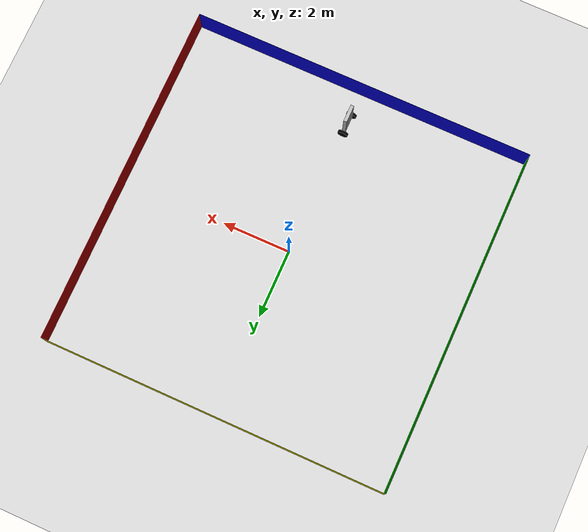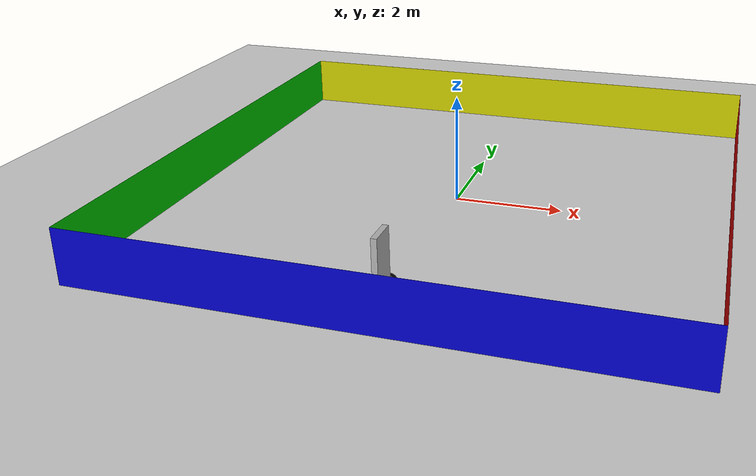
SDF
<sdf version='1.10'>
  <world name='empty'>
    <physics name='1ms' type='ignored'>
      <max_step_size>0.001</max_step_size>
      <real_time_factor>1</real_time_factor>
      <real_time_update_rate>1000</real_time_update_rate>
    </physics>
    <plugin name='gz::sim::systems::Physics' filename='gz-sim-physics-system' />
    <plugin name='gz::sim::systems::UserCommands' filename='gz-sim-user-commands-system' />
    <plugin name='gz::sim::systems::SceneBroadcaster' filename='gz-sim-scene-broadcaster-system' />
    <plugin name='gz::sim::systems::Contact' filename='gz-sim-contact-system' />
    <gravity>0 0 -9.8000000000000007</gravity>
    <magnetic_field>5.5644999999999998e-06 2.2875799999999999e-05 -4.2388400000000002e-05</magnetic_field>
    <atmosphere type='adiabatic' />
    <scene>
      <ambient>0.400000006 0.400000006 0.400000006 1</ambient>
      <background>0.699999988 0.699999988 0.699999988 1</background>
      <shadows>true</shadows>
    </scene>
    <model name='ground_plane'>
      <static>true</static>
      <link name='link'>
        <collision name='collision'>
          <geometry>
            <plane>
              <normal>0 0 1</normal>
              <size>10 10</size>
            </plane>
          </geometry>
          <surface>
            <friction>
              <ode />
            </friction>
            <bounce />
            <contact />
          </surface>
        </collision>
        <visual name='visual'>
          <geometry>
            <plane>
              <normal>0 0 1</normal>
              <size>10 10</size>
            </plane>
          </geometry>
          <material>
            <ambient>0.800000012 0.800000012 0.800000012 1</ambient>
            <diffuse>0.800000012 0.800000012 0.800000012 1</diffuse>
            <specular>0.800000012 0.800000012 0.800000012 1</specular>
          </material>
        </visual>
        <pose>0 0 0 0 0 0</pose>
        <inertial>
          <pose>0 0 0 0 0 0</pose>
          <mass>1</mass>
          <inertia>
            <ixx>1</ixx>
            <ixy>0</ixy>
            <ixz>0</ixz>
            <iyy>1</iyy>
            <iyz>0</iyz>
            <izz>1</izz>
          </inertia>
        </inertial>
        <enable_wind>false</enable_wind>
      </link>
      <pose>0 0 0 0 0 0</pose>
      <self_collide>false</self_collide>
    </model>
    <model name='wall_y1_red'>
      <static>true</static>
      <link name='link'>
        <collision name='collision'>
          <geometry>
            <plane>
              <normal>1 0 0</normal>
              <size>1 10</size>
            </plane>
          </geometry>
          <surface>
            <friction>
              <ode />
            </friction>
            <bounce />
            <contact />
          </surface>
        </collision>
        <visual name='visual'>
          <geometry>
            <plane>
              <normal>1 0 0</normal>
              <size>1 10</size>
            </plane>
          </geometry>
          <material>
            <ambient>0.800000012 0.000000012 0.000000012 1</ambient>
            <diffuse>0.800000012 0.000000012 0.00000012 1</diffuse>
            <specular>0.800000012 0.000000012 0.000000012 1</specular>
          </material>
        </visual>
        <pose>5 0 0.5 0 0 3.141592654</pose>
        <inertial>
          <pose>0 0 0 0 0 0</pose>
          <mass>1</mass>
          <inertia>
            <ixx>1</ixx>
            <ixy>0</ixy>
            <ixz>0</ixz>
            <iyy>1</iyy>
            <iyz>0</iyz>
            <izz>1</izz>
          </inertia>
        </inertial>
        <enable_wind>false</enable_wind>
      </link>
      <pose>0 0 0 0 0 0</pose>
      <self_collide>false</self_collide>
    </model>
    <model name='wall_y2_green'>
      <static>true</static>
      <link name='link'>
        <collision name='collision'>
          <geometry>
            <plane>
              <normal>1 0 0</normal>
              <size>1 10</size>
            </plane>
          </geometry>
          <surface>
            <friction>
              <ode />
            </friction>
            <bounce />
            <contact />
          </surface>
        </collision>
        <visual name='visual'>
          <geometry>
            <plane>
              <normal>1 0 0</normal>
              <size>1 10</size>
            </plane>
          </geometry>
          <material>
            <ambient>0.000000012 0.800000012 0.000000012 1</ambient>
            <diffuse>0.000000012 0.800000012 0.000000012 1</diffuse>
            <specular>0.000000012 0.800000012 0.000000012 1</specular>
          </material>
        </visual>
        <pose>-5 0 0.5 0 0 0</pose>
        <inertial>
          <pose>0 0 0 0 0 0</pose>
          <mass>1</mass>
          <inertia>
            <ixx>1</ixx>
            <ixy>0</ixy>
            <ixz>0</ixz>
            <iyy>1</iyy>
            <iyz>0</iyz>
            <izz>1</izz>
          </inertia>
        </inertial>
        <enable_wind>false</enable_wind>
      </link>
      <pose>0 0 0 0 0 0</pose>
      <self_collide>false</self_collide>
    </model>
    <model name='wall_x1_blue'>
      <static>true</static>
      <link name='link'>
        <collision name='collision'>
          <geometry>
            <plane>
              <normal>0 1 0</normal>
              <size>1 10</size>
            </plane>
          </geometry>
          <surface>
            <friction>
              <ode />
            </friction>
            <bounce />
            <contact />
          </surface>
        </collision>
        <visual name='visual'>
          <geometry>
            <plane>
              <normal>0 1 0</normal>
              <size>1 10</size>
            </plane>
          </geometry>
          <material>
            <ambient>0.000000012 0.000000012 0.800000012 1</ambient>
            <diffuse>0.000000012 0.000000012 0.800000012 1</diffuse>
            <specular>0.000000012 0.000000012 0.800000012 1</specular>
          </material>
        </visual>
        <pose>0 -5 0.5 0 1.570796 0</pose>
        <inertial>
          <pose>0 0 0 0 0 0</pose>
          <mass>1</mass>
          <inertia>
            <ixx>1</ixx>
            <ixy>0</ixy>
            <ixz>0</ixz>
            <iyy>1</iyy>
            <iyz>0</iyz>
            <izz>1</izz>
          </inertia>
        </inertial>
        <enable_wind>false</enable_wind>
      </link>
      <pose>0 0 0 0 0 0</pose>
      <self_collide>false</self_collide>
    </model>
    <model name='wall_x2_yellow'>
      <static>true</static>
      <link name='link'>
        <collision name='collision'>
          <geometry>
            <plane>
              <normal>0 1 0</normal>
              <size>1 10</size>
            </plane>
          </geometry>
          <surface>
            <friction>
              <ode />
            </friction>
            <bounce />
            <contact />
          </surface>
        </collision>
        <visual name='visual'>
          <geometry>
            <plane>
              <normal>0 1 0</normal>
              <size>1 10</size>
            </plane>
          </geometry>
          <material>
            <ambient>0.800000012 0.800000012 0.000000012 1</ambient>
            <diffuse>0.800000012 0.800000012 0.000000012 1</diffuse>
            <specular>0.800000012 0.800000012 0.000000012 1</specular>
          </material>
        </visual>
        <pose>0 5 0.5 0 1.570796 3.14159265</pose>
        <inertial>
          <pose>0 0 0 0 0 0</pose>
          <mass>1</mass>
          <inertia>
            <ixx>1</ixx>
            <ixy>0</ixy>
            <ixz>0</ixz>
            <iyy>1</iyy>
            <iyz>0</iyz>
            <izz>1</izz>
          </inertia>
        </inertial>
        <enable_wind>false</enable_wind>
      </link>
      <pose>0 0 0 0 0 0</pose>
      <self_collide>false</self_collide>
    </model>
    <model name="cart_rigid_suspension">
      <plugin filename="libgz-sim-diff-drive-system.so" name="gz::sim::systems::DiffDrive">
        <left_joint>wheel_front_left_spin</left_joint>
        <right_joint>wheel_front_right_spin</right_joint>
        <wheel_separation>0.596</wheel_separation>
        <wheel_radius>0.15</wheel_radius>
        <odom_publish_frequency>1</odom_publish_frequency>
        <topic>cmd_vel</topic>
        <max_linear_velocity>100</max_linear_velocity>
        <max_linear_acceleration>100</max_linear_acceleration>

      </plugin>
      <plugin filename="libgz-sim-pose-publisher-system.so" name="gz::sim::systems::PosePublisher">
        <publish_link_pose>False</publish_link_pose>
        <publish_visual_pose>False</publish_visual_pose>
        <publish_collision_pose>False</publish_collision_pose>
        <publish_sensor_pose>False</publish_sensor_pose>
        <publish_model_pose>True</publish_model_pose>
        <publish_nested_model_pose>True</publish_nested_model_pose>
        <use_pose_vector_msg>False</use_pose_vector_msg>
        <update_frequency>100</update_frequency>
      </plugin>

      <pose>0 -4 0 0 0 0</pose>
      <link name="chassis">
        <pose>0 0 0.65 0 0 0</pose>
        <inertial>
          <pose>0 0 1 0 0 0</pose>
          <mass>1</mass>
          <inertia>
            <ixx>0.020833</ixx>
            <iyy>0.75</iyy>
            <izz>0.770833</izz>
            <ixy>0</ixy>
            <ixz>0</ixz>
            <iyz>0</iyz>
          </inertia>
        </inertial>
        <collision name="collision">
          <geometry>
            <box>
              <size>0.1 0.5 1.0</size>
            </box>
          </geometry>
        </collision>
        <visual name="visual">
          <geometry>
            <box>
              <size>0.1 0.5 1.0</size>
            </box>
          </geometry>
          <material>
            <ambient>0.3 0.3 0.3 1.0</ambient>
            <diffuse>0.7 0.7 0.7 1.0</diffuse>
            <specular>0.1 0.1 0.1 1.0</specular>
          </material>
        </visual>
      </link>
      <link name="wheel_front_left">
        <pose>0 0.298 0.15 -1.5707963267948966 0 0</pose>
        <inertial>
          <mass>0.5</mass>
          <inertia>
            <ixx>0.0030791666666666667</ixx>
            <iyy>0.0030791666666666667</iyy>
            <izz>0.005625</izz>
            <ixy>0</ixy>
            <ixz>0</ixz>
            <iyz>0</iyz>
          </inertia>
        </inertial>
        <collision name="collision">
          <geometry>
            <cylinder>
              <radius>0.15</radius>
              <length>0.08</length>
            </cylinder>
          </geometry>
        </collision>
        <visual name="visual">
          <geometry>
            <cylinder>
              <radius>0.15</radius>
              <length>0.08</length>
            </cylinder>
          </geometry>
          <material>
            <ambient>0 0 0 1.0</ambient>
            <diffuse>0 0 0 1.0</diffuse>
            <specular>0.01 0.01 0.01 1.0</specular>
          </material>
        </visual>
      </link>
      <joint name="wheel_front_left_spin" type="revolute">
        <parent>chassis</parent>
        <child>wheel_front_left</child>
        <axis>
          <xyz>0 0 1</xyz>
        </axis>
      </joint>
      <link name="wheel_front_right">
        <pose>0 -0.298 0.15 -1.5707963267948966 0 0</pose>
        <inertial>
          <mass>0.5</mass>
          <inertia>
            <ixx>0.0030791666666666667</ixx>
            <iyy>0.0030791666666666667</iyy>
            <izz>0.005625</izz>
            <ixy>0</ixy>
            <ixz>0</ixz>
            <iyz>0</iyz>
          </inertia>
        </inertial>
        <collision name="collision">
          <geometry>
            <cylinder>
              <radius>0.15</radius>
              <length>0.08</length>
            </cylinder>
          </geometry>
        </collision>
        <visual name="visual">
          <geometry>
            <cylinder>
              <radius>0.15</radius>
              <length>0.08</length>
            </cylinder>
          </geometry>
          <material>
            <ambient>0 0 0 1.0</ambient>
            <diffuse>0 0 0 1.0</diffuse>
            <specular>0.01 0.01 0.01 1.0</specular>
          </material>
        </visual>
      </link>
      <joint name="wheel_front_right_spin" type="revolute">
        <parent>chassis</parent>
        <child>wheel_front_right</child>
        <axis>
          <xyz>0 0 1</xyz>
        </axis>
      </joint>
    </model>
    <light name='sun' type='directional'>
      <pose>0 0 10 0 0 0</pose>
      <cast_shadows>true</cast_shadows>
      <intensity>1</intensity>
      <direction>-0.5 0.10000000000000001 -0.90000000000000002</direction>
      <diffuse>0.800000012 0.800000012 0.800000012 1</diffuse>
      <specular>0.200000003 0.200000003 0.200000003 1</specular>
      <attenuation>
        <range>1000</range>
        <linear>0.01</linear>
        <constant>0.90000000000000002</constant>
        <quadratic>0.001</quadratic>
      </attenuation>
      <spot>
        <inner_angle>0</inner_angle>
        <outer_angle>0</outer_angle>
        <falloff>0</falloff>
      </spot>
    </light>
  </world>
</sdf>
